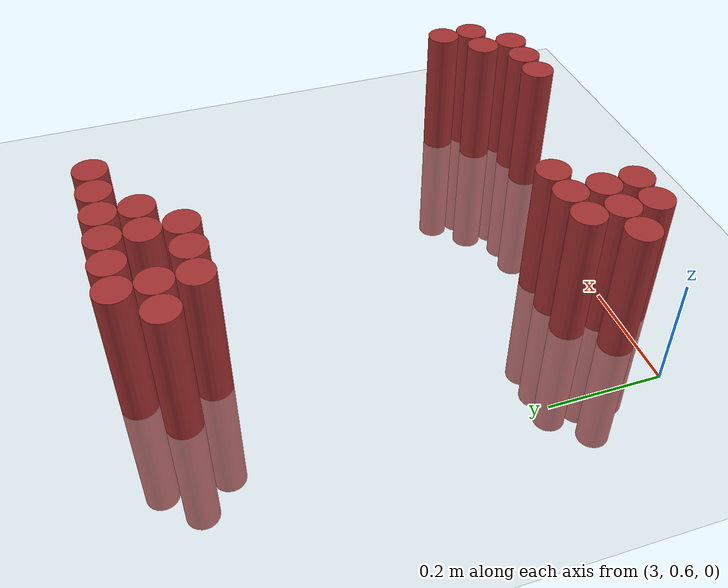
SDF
<sdf version="1.6">
 <world name="default">
  <model name="ground_plane">
   <static>1</static>
   <link name="link">
    <collision name="collision">
     <geometry><plane><normal>0 0 1</normal><size>100 100</size></plane></geometry>
     <surface><friction><ode><mu>100</mu><mu2>50</mu2></ode></friction></surface>
    </collision>
    <visual name="visual">
     <cast_shadows>0</cast_shadows>
     <geometry><plane><normal>0 0 1</normal><size>100 100</size></plane></geometry>
     <material>
      <script><uri>file://media/materials/scripts/gazebo.material</uri><name>Gazebo/Grey</name></script>
     </material>
    </visual>
   </link>
  </model>
  <model name="unit_cylinder_158">
   <static>1</static>
   <pose>3.210000 1.410000 0.000000 0.000000 0.000000 0.000000</pose>
   <link name="link">
    <inertial>
     <mass>1</mass>
     <inertia><ixx>0.145833</ixx><ixy>0</ixy><ixz>0</ixz><iyy>0.145833</iyy><iyz>0</iyz><izz>0.125</izz></inertia>
    </inertial>
    <collision name="collision">
     <geometry><cylinder><radius>0.030000</radius><length>0.5</length></cylinder></geometry>
    </collision>
    <visual name="visual">
     <geometry><cylinder><radius>0.030000</radius><length>0.5</length></cylinder></geometry>
     <material>
      <ambient>0.648000 0.192000 0.192000 1</ambient>
      <diffuse>0.648000 0.192000 0.192000 1</diffuse>
     </material>
     <material>
      <script><name>Gazebo/Grey</name><uri>file://media/materials/scripts/gazebo.material</uri></script>
     </material>
    </visual>
   </link>
  </model>
  <model name="unit_cylinder_159">
   <static>1</static>
   <pose>3.270000 1.410000 0.000000 0.000000 0.000000 0.000000</pose>
   <link name="link">
    <inertial>
     <mass>1</mass>
     <inertia><ixx>0.145833</ixx><ixy>0</ixy><ixz>0</ixz><iyy>0.145833</iyy><iyz>0</iyz><izz>0.125</izz></inertia>
    </inertial>
    <collision name="collision">
     <geometry><cylinder><radius>0.030000</radius><length>0.5</length></cylinder></geometry>
    </collision>
    <visual name="visual">
     <geometry><cylinder><radius>0.030000</radius><length>0.5</length></cylinder></geometry>
     <material>
      <ambient>0.648000 0.192000 0.192000 1</ambient>
      <diffuse>0.648000 0.192000 0.192000 1</diffuse>
     </material>
     <material>
      <script><name>Gazebo/Grey</name><uri>file://media/materials/scripts/gazebo.material</uri></script>
     </material>
    </visual>
   </link>
  </model>
  <model name="unit_cylinder_160">
   <static>1</static>
   <pose>3.330000 1.410000 0.000000 0.000000 0.000000 0.000000</pose>
   <link name="link">
    <inertial>
     <mass>1</mass>
     <inertia><ixx>0.145833</ixx><ixy>0</ixy><ixz>0</ixz><iyy>0.145833</iyy><iyz>0</iyz><izz>0.125</izz></inertia>
    </inertial>
    <collision name="collision">
     <geometry><cylinder><radius>0.030000</radius><length>0.5</length></cylinder></geometry>
    </collision>
    <visual name="visual">
     <geometry><cylinder><radius>0.030000</radius><length>0.5</length></cylinder></geometry>
     <material>
      <ambient>0.648000 0.192000 0.192000 1</ambient>
      <diffuse>0.648000 0.192000 0.192000 1</diffuse>
     </material>
     <material>
      <script><name>Gazebo/Grey</name><uri>file://media/materials/scripts/gazebo.material</uri></script>
     </material>
    </visual>
   </link>
  </model>
  <model name="unit_cylinder_161">
   <static>1</static>
   <pose>3.390000 1.410000 0.000000 0.000000 0.000000 0.000000</pose>
   <link name="link">
    <inertial>
     <mass>1</mass>
     <inertia><ixx>0.145833</ixx><ixy>0</ixy><ixz>0</ixz><iyy>0.145833</iyy><iyz>0</iyz><izz>0.125</izz></inertia>
    </inertial>
    <collision name="collision">
     <geometry><cylinder><radius>0.030000</radius><length>0.5</length></cylinder></geometry>
    </collision>
    <visual name="visual">
     <geometry><cylinder><radius>0.030000</radius><length>0.5</length></cylinder></geometry>
     <material>
      <ambient>0.648000 0.192000 0.192000 1</ambient>
      <diffuse>0.648000 0.192000 0.192000 1</diffuse>
     </material>
     <material>
      <script><name>Gazebo/Grey</name><uri>file://media/materials/scripts/gazebo.material</uri></script>
     </material>
    </visual>
   </link>
  </model>
  <model name="unit_cylinder_162">
   <static>1</static>
   <pose>3.450000 1.410000 0.000000 0.000000 0.000000 0.000000</pose>
   <link name="link">
    <inertial>
     <mass>1</mass>
     <inertia><ixx>0.145833</ixx><ixy>0</ixy><ixz>0</ixz><iyy>0.145833</iyy><iyz>0</iyz><izz>0.125</izz></inertia>
    </inertial>
    <collision name="collision">
     <geometry><cylinder><radius>0.030000</radius><length>0.5</length></cylinder></geometry>
    </collision>
    <visual name="visual">
     <geometry><cylinder><radius>0.030000</radius><length>0.5</length></cylinder></geometry>
     <material>
      <ambient>0.648000 0.192000 0.192000 1</ambient>
      <diffuse>0.648000 0.192000 0.192000 1</diffuse>
     </material>
     <material>
      <script><name>Gazebo/Grey</name><uri>file://media/materials/scripts/gazebo.material</uri></script>
     </material>
    </visual>
   </link>
  </model>
  <model name="unit_cylinder_163">
   <static>1</static>
   <pose>3.510000 1.410000 0.000000 0.000000 0.000000 0.000000</pose>
   <link name="link">
    <inertial>
     <mass>1</mass>
     <inertia><ixx>0.145833</ixx><ixy>0</ixy><ixz>0</ixz><iyy>0.145833</iyy><iyz>0</iyz><izz>0.125</izz></inertia>
    </inertial>
    <collision name="collision">
     <geometry><cylinder><radius>0.030000</radius><length>0.5</length></cylinder></geometry>
    </collision>
    <visual name="visual">
     <geometry><cylinder><radius>0.030000</radius><length>0.5</length></cylinder></geometry>
     <material>
      <ambient>0.648000 0.192000 0.192000 1</ambient>
      <diffuse>0.648000 0.192000 0.192000 1</diffuse>
     </material>
     <material>
      <script><name>Gazebo/Grey</name><uri>file://media/materials/scripts/gazebo.material</uri></script>
     </material>
    </visual>
   </link>
  </model>
  <model name="unit_cylinder_167">
   <static>1</static>
   <pose>3.150000 1.350000 0.000000 0.000000 0.000000 0.000000</pose>
   <link name="link">
    <inertial>
     <mass>1</mass>
     <inertia><ixx>0.145833</ixx><ixy>0</ixy><ixz>0</ixz><iyy>0.145833</iyy><iyz>0</iyz><izz>0.125</izz></inertia>
    </inertial>
    <collision name="collision">
     <geometry><cylinder><radius>0.030000</radius><length>0.5</length></cylinder></geometry>
    </collision>
    <visual name="visual">
     <geometry><cylinder><radius>0.030000</radius><length>0.5</length></cylinder></geometry>
     <material>
      <ambient>0.648000 0.192000 0.192000 1</ambient>
      <diffuse>0.648000 0.192000 0.192000 1</diffuse>
     </material>
     <material>
      <script><name>Gazebo/Grey</name><uri>file://media/materials/scripts/gazebo.material</uri></script>
     </material>
    </visual>
   </link>
  </model>
  <model name="unit_cylinder_168">
   <static>1</static>
   <pose>3.210000 1.350000 0.000000 0.000000 0.000000 0.000000</pose>
   <link name="link">
    <inertial>
     <mass>1</mass>
     <inertia><ixx>0.145833</ixx><ixy>0</ixy><ixz>0</ixz><iyy>0.145833</iyy><iyz>0</iyz><izz>0.125</izz></inertia>
    </inertial>
    <collision name="collision">
     <geometry><cylinder><radius>0.030000</radius><length>0.5</length></cylinder></geometry>
    </collision>
    <visual name="visual">
     <geometry><cylinder><radius>0.030000</radius><length>0.5</length></cylinder></geometry>
     <material>
      <ambient>0.648000 0.192000 0.192000 1</ambient>
      <diffuse>0.648000 0.192000 0.192000 1</diffuse>
     </material>
     <material>
      <script><name>Gazebo/Grey</name><uri>file://media/materials/scripts/gazebo.material</uri></script>
     </material>
    </visual>
   </link>
  </model>
  <model name="unit_cylinder_169">
   <static>1</static>
   <pose>3.330000 1.350000 0.000000 0.000000 0.000000 0.000000</pose>
   <link name="link">
    <inertial>
     <mass>1</mass>
     <inertia><ixx>0.145833</ixx><ixy>0</ixy><ixz>0</ixz><iyy>0.145833</iyy><iyz>0</iyz><izz>0.125</izz></inertia>
    </inertial>
    <collision name="collision">
     <geometry><cylinder><radius>0.030000</radius><length>0.5</length></cylinder></geometry>
    </collision>
    <visual name="visual">
     <geometry><cylinder><radius>0.030000</radius><length>0.5</length></cylinder></geometry>
     <material>
      <ambient>0.648000 0.192000 0.192000 1</ambient>
      <diffuse>0.648000 0.192000 0.192000 1</diffuse>
     </material>
     <material>
      <script><name>Gazebo/Grey</name><uri>file://media/materials/scripts/gazebo.material</uri></script>
     </material>
    </visual>
   </link>
  </model>
  <model name="unit_cylinder_170">
   <static>1</static>
   <pose>3.390000 1.350000 0.000000 0.000000 0.000000 0.000000</pose>
   <link name="link">
    <inertial>
     <mass>1</mass>
     <inertia><ixx>0.145833</ixx><ixy>0</ixy><ixz>0</ixz><iyy>0.145833</iyy><iyz>0</iyz><izz>0.125</izz></inertia>
    </inertial>
    <collision name="collision">
     <geometry><cylinder><radius>0.030000</radius><length>0.5</length></cylinder></geometry>
    </collision>
    <visual name="visual">
     <geometry><cylinder><radius>0.030000</radius><length>0.5</length></cylinder></geometry>
     <material>
      <ambient>0.648000 0.192000 0.192000 1</ambient>
      <diffuse>0.648000 0.192000 0.192000 1</diffuse>
     </material>
     <material>
      <script><name>Gazebo/Grey</name><uri>file://media/materials/scripts/gazebo.material</uri></script>
     </material>
    </visual>
   </link>
  </model>
  <model name="unit_cylinder_172">
   <static>1</static>
   <pose>3.210000 1.290000 0.000000 0.000000 0.000000 0.000000</pose>
   <link name="link">
    <inertial>
     <mass>1</mass>
     <inertia><ixx>0.145833</ixx><ixy>0</ixy><ixz>0</ixz><iyy>0.145833</iyy><iyz>0</iyz><izz>0.125</izz></inertia>
    </inertial>
    <collision name="collision">
     <geometry><cylinder><radius>0.030000</radius><length>0.5</length></cylinder></geometry>
    </collision>
    <visual name="visual">
     <geometry><cylinder><radius>0.030000</radius><length>0.5</length></cylinder></geometry>
     <material>
      <ambient>0.648000 0.192000 0.192000 1</ambient>
      <diffuse>0.648000 0.192000 0.192000 1</diffuse>
     </material>
     <material>
      <script><name>Gazebo/Grey</name><uri>file://media/materials/scripts/gazebo.material</uri></script>
     </material>
    </visual>
   </link>
  </model>
  <model name="unit_cylinder_173">
   <static>1</static>
   <pose>3.270000 1.290000 0.000000 0.000000 0.000000 0.000000</pose>
   <link name="link">
    <inertial>
     <mass>1</mass>
     <inertia><ixx>0.145833</ixx><ixy>0</ixy><ixz>0</ixz><iyy>0.145833</iyy><iyz>0</iyz><izz>0.125</izz></inertia>
    </inertial>
    <collision name="collision">
     <geometry><cylinder><radius>0.030000</radius><length>0.5</length></cylinder></geometry>
    </collision>
    <visual name="visual">
     <geometry><cylinder><radius>0.030000</radius><length>0.5</length></cylinder></geometry>
     <material>
      <ambient>0.648000 0.192000 0.192000 1</ambient>
      <diffuse>0.648000 0.192000 0.192000 1</diffuse>
     </material>
     <material>
      <script><name>Gazebo/Grey</name><uri>file://media/materials/scripts/gazebo.material</uri></script>
     </material>
    </visual>
   </link>
  </model>
  <model name="unit_cylinder_174">
   <static>1</static>
   <pose>3.330000 1.290000 0.000000 0.000000 0.000000 0.000000</pose>
   <link name="link">
    <inertial>
     <mass>1</mass>
     <inertia><ixx>0.145833</ixx><ixy>0</ixy><ixz>0</ixz><iyy>0.145833</iyy><iyz>0</iyz><izz>0.125</izz></inertia>
    </inertial>
    <collision name="collision">
     <geometry><cylinder><radius>0.030000</radius><length>0.5</length></cylinder></geometry>
    </collision>
    <visual name="visual">
     <geometry><cylinder><radius>0.030000</radius><length>0.5</length></cylinder></geometry>
     <material>
      <ambient>0.648000 0.192000 0.192000 1</ambient>
      <diffuse>0.648000 0.192000 0.192000 1</diffuse>
     </material>
     <material>
      <script><name>Gazebo/Grey</name><uri>file://media/materials/scripts/gazebo.material</uri></script>
     </material>
    </visual>
   </link>
  </model>
  <model name="unit_cylinder_199">
   <static>1</static>
   <pose>3.150000 0.690000 0.000000 0.000000 0.000000 0.000000</pose>
   <link name="link">
    <inertial>
     <mass>1</mass>
     <inertia><ixx>0.145833</ixx><ixy>0</ixy><ixz>0</ixz><iyy>0.145833</iyy><iyz>0</iyz><izz>0.125</izz></inertia>
    </inertial>
    <collision name="collision">
     <geometry><cylinder><radius>0.030000</radius><length>0.5</length></cylinder></geometry>
    </collision>
    <visual name="visual">
     <geometry><cylinder><radius>0.030000</radius><length>0.5</length></cylinder></geometry>
     <material>
      <ambient>0.648000 0.192000 0.192000 1</ambient>
      <diffuse>0.648000 0.192000 0.192000 1</diffuse>
     </material>
     <material>
      <script><name>Gazebo/Grey</name><uri>file://media/materials/scripts/gazebo.material</uri></script>
     </material>
    </visual>
   </link>
  </model>
  <model name="unit_cylinder_200">
   <static>1</static>
   <pose>3.210000 0.690000 0.000000 0.000000 0.000000 0.000000</pose>
   <link name="link">
    <inertial>
     <mass>1</mass>
     <inertia><ixx>0.145833</ixx><ixy>0</ixy><ixz>0</ixz><iyy>0.145833</iyy><iyz>0</iyz><izz>0.125</izz></inertia>
    </inertial>
    <collision name="collision">
     <geometry><cylinder><radius>0.030000</radius><length>0.5</length></cylinder></geometry>
    </collision>
    <visual name="visual">
     <geometry><cylinder><radius>0.030000</radius><length>0.5</length></cylinder></geometry>
     <material>
      <ambient>0.648000 0.192000 0.192000 1</ambient>
      <diffuse>0.648000 0.192000 0.192000 1</diffuse>
     </material>
     <material>
      <script><name>Gazebo/Grey</name><uri>file://media/materials/scripts/gazebo.material</uri></script>
     </material>
    </visual>
   </link>
  </model>
  <model name="unit_cylinder_201">
   <static>1</static>
   <pose>3.270000 0.690000 0.000000 0.000000 0.000000 0.000000</pose>
   <link name="link">
    <inertial>
     <mass>1</mass>
     <inertia><ixx>0.145833</ixx><ixy>0</ixy><ixz>0</ixz><iyy>0.145833</iyy><iyz>0</iyz><izz>0.125</izz></inertia>
    </inertial>
    <collision name="collision">
     <geometry><cylinder><radius>0.030000</radius><length>0.5</length></cylinder></geometry>
    </collision>
    <visual name="visual">
     <geometry><cylinder><radius>0.030000</radius><length>0.5</length></cylinder></geometry>
     <material>
      <ambient>0.648000 0.192000 0.192000 1</ambient>
      <diffuse>0.648000 0.192000 0.192000 1</diffuse>
     </material>
     <material>
      <script><name>Gazebo/Grey</name><uri>file://media/materials/scripts/gazebo.material</uri></script>
     </material>
    </visual>
   </link>
  </model>
  <model name="unit_cylinder_202">
   <static>1</static>
   <pose>3.750000 0.690000 0.000000 0.000000 0.000000 0.000000</pose>
   <link name="link">
    <inertial>
     <mass>1</mass>
     <inertia><ixx>0.145833</ixx><ixy>0</ixy><ixz>0</ixz><iyy>0.145833</iyy><iyz>0</iyz><izz>0.125</izz></inertia>
    </inertial>
    <collision name="collision">
     <geometry><cylinder><radius>0.030000</radius><length>0.5</length></cylinder></geometry>
    </collision>
    <visual name="visual">
     <geometry><cylinder><radius>0.030000</radius><length>0.5</length></cylinder></geometry>
     <material>
      <ambient>0.648000 0.192000 0.192000 1</ambient>
      <diffuse>0.648000 0.192000 0.192000 1</diffuse>
     </material>
     <material>
      <script><name>Gazebo/Grey</name><uri>file://media/materials/scripts/gazebo.material</uri></script>
     </material>
    </visual>
   </link>
  </model>
  <model name="unit_cylinder_204">
   <static>1</static>
   <pose>3.090000 0.630000 0.000000 0.000000 0.000000 0.000000</pose>
   <link name="link">
    <inertial>
     <mass>1</mass>
     <inertia><ixx>0.145833</ixx><ixy>0</ixy><ixz>0</ixz><iyy>0.145833</iyy><iyz>0</iyz><izz>0.125</izz></inertia>
    </inertial>
    <collision name="collision">
     <geometry><cylinder><radius>0.030000</radius><length>0.5</length></cylinder></geometry>
    </collision>
    <visual name="visual">
     <geometry><cylinder><radius>0.030000</radius><length>0.5</length></cylinder></geometry>
     <material>
      <ambient>0.648000 0.192000 0.192000 1</ambient>
      <diffuse>0.648000 0.192000 0.192000 1</diffuse>
     </material>
     <material>
      <script><name>Gazebo/Grey</name><uri>file://media/materials/scripts/gazebo.material</uri></script>
     </material>
    </visual>
   </link>
  </model>
  <model name="unit_cylinder_205">
   <static>1</static>
   <pose>3.150000 0.630000 0.000000 0.000000 0.000000 0.000000</pose>
   <link name="link">
    <inertial>
     <mass>1</mass>
     <inertia><ixx>0.145833</ixx><ixy>0</ixy><ixz>0</ixz><iyy>0.145833</iyy><iyz>0</iyz><izz>0.125</izz></inertia>
    </inertial>
    <collision name="collision">
     <geometry><cylinder><radius>0.030000</radius><length>0.5</length></cylinder></geometry>
    </collision>
    <visual name="visual">
     <geometry><cylinder><radius>0.030000</radius><length>0.5</length></cylinder></geometry>
     <material>
      <ambient>0.648000 0.192000 0.192000 1</ambient>
      <diffuse>0.648000 0.192000 0.192000 1</diffuse>
     </material>
     <material>
      <script><name>Gazebo/Grey</name><uri>file://media/materials/scripts/gazebo.material</uri></script>
     </material>
    </visual>
   </link>
  </model>
  <model name="unit_cylinder_206">
   <static>1</static>
   <pose>3.210000 0.630000 0.000000 0.000000 0.000000 0.000000</pose>
   <link name="link">
    <inertial>
     <mass>1</mass>
     <inertia><ixx>0.145833</ixx><ixy>0</ixy><ixz>0</ixz><iyy>0.145833</iyy><iyz>0</iyz><izz>0.125</izz></inertia>
    </inertial>
    <collision name="collision">
     <geometry><cylinder><radius>0.030000</radius><length>0.5</length></cylinder></geometry>
    </collision>
    <visual name="visual">
     <geometry><cylinder><radius>0.030000</radius><length>0.5</length></cylinder></geometry>
     <material>
      <ambient>0.648000 0.192000 0.192000 1</ambient>
      <diffuse>0.648000 0.192000 0.192000 1</diffuse>
     </material>
     <material>
      <script><name>Gazebo/Grey</name><uri>file://media/materials/scripts/gazebo.material</uri></script>
     </material>
    </visual>
   </link>
  </model>
  <model name="unit_cylinder_207">
   <static>1</static>
   <pose>3.690000 0.630000 0.000000 0.000000 0.000000 0.000000</pose>
   <link name="link">
    <inertial>
     <mass>1</mass>
     <inertia><ixx>0.145833</ixx><ixy>0</ixy><ixz>0</ixz><iyy>0.145833</iyy><iyz>0</iyz><izz>0.125</izz></inertia>
    </inertial>
    <collision name="collision">
     <geometry><cylinder><radius>0.030000</radius><length>0.5</length></cylinder></geometry>
    </collision>
    <visual name="visual">
     <geometry><cylinder><radius>0.030000</radius><length>0.5</length></cylinder></geometry>
     <material>
      <ambient>0.648000 0.192000 0.192000 1</ambient>
      <diffuse>0.648000 0.192000 0.192000 1</diffuse>
     </material>
     <material>
      <script><name>Gazebo/Grey</name><uri>file://media/materials/scripts/gazebo.material</uri></script>
     </material>
    </visual>
   </link>
  </model>
  <model name="unit_cylinder_208">
   <static>1</static>
   <pose>3.750000 0.630000 0.000000 0.000000 0.000000 0.000000</pose>
   <link name="link">
    <inertial>
     <mass>1</mass>
     <inertia><ixx>0.145833</ixx><ixy>0</ixy><ixz>0</ixz><iyy>0.145833</iyy><iyz>0</iyz><izz>0.125</izz></inertia>
    </inertial>
    <collision name="collision">
     <geometry><cylinder><radius>0.030000</radius><length>0.5</length></cylinder></geometry>
    </collision>
    <visual name="visual">
     <geometry><cylinder><radius>0.030000</radius><length>0.5</length></cylinder></geometry>
     <material>
      <ambient>0.648000 0.192000 0.192000 1</ambient>
      <diffuse>0.648000 0.192000 0.192000 1</diffuse>
     </material>
     <material>
      <script><name>Gazebo/Grey</name><uri>file://media/materials/scripts/gazebo.material</uri></script>
     </material>
    </visual>
   </link>
  </model>
  <model name="unit_cylinder_211">
   <static>1</static>
   <pose>3.150000 0.570000 0.000000 0.000000 0.000000 0.000000</pose>
   <link name="link">
    <inertial>
     <mass>1</mass>
     <inertia><ixx>0.145833</ixx><ixy>0</ixy><ixz>0</ixz><iyy>0.145833</iyy><iyz>0</iyz><izz>0.125</izz></inertia>
    </inertial>
    <collision name="collision">
     <geometry><cylinder><radius>0.030000</radius><length>0.5</length></cylinder></geometry>
    </collision>
    <visual name="visual">
     <geometry><cylinder><radius>0.030000</radius><length>0.5</length></cylinder></geometry>
     <material>
      <ambient>0.648000 0.192000 0.192000 1</ambient>
      <diffuse>0.648000 0.192000 0.192000 1</diffuse>
     </material>
     <material>
      <script><name>Gazebo/Grey</name><uri>file://media/materials/scripts/gazebo.material</uri></script>
     </material>
    </visual>
   </link>
  </model>
  <model name="unit_cylinder_212">
   <static>1</static>
   <pose>3.210000 0.570000 0.000000 0.000000 0.000000 0.000000</pose>
   <link name="link">
    <inertial>
     <mass>1</mass>
     <inertia><ixx>0.145833</ixx><ixy>0</ixy><ixz>0</ixz><iyy>0.145833</iyy><iyz>0</iyz><izz>0.125</izz></inertia>
    </inertial>
    <collision name="collision">
     <geometry><cylinder><radius>0.030000</radius><length>0.5</length></cylinder></geometry>
    </collision>
    <visual name="visual">
     <geometry><cylinder><radius>0.030000</radius><length>0.5</length></cylinder></geometry>
     <material>
      <ambient>0.648000 0.192000 0.192000 1</ambient>
      <diffuse>0.648000 0.192000 0.192000 1</diffuse>
     </material>
     <material>
      <script><name>Gazebo/Grey</name><uri>file://media/materials/scripts/gazebo.material</uri></script>
     </material>
    </visual>
   </link>
  </model>
  <model name="unit_cylinder_213">
   <static>1</static>
   <pose>3.570000 0.570000 0.000000 0.000000 0.000000 0.000000</pose>
   <link name="link">
    <inertial>
     <mass>1</mass>
     <inertia><ixx>0.145833</ixx><ixy>0</ixy><ixz>0</ixz><iyy>0.145833</iyy><iyz>0</iyz><izz>0.125</izz></inertia>
    </inertial>
    <collision name="collision">
     <geometry><cylinder><radius>0.030000</radius><length>0.5</length></cylinder></geometry>
    </collision>
    <visual name="visual">
     <geometry><cylinder><radius>0.030000</radius><length>0.5</length></cylinder></geometry>
     <material>
      <ambient>0.648000 0.192000 0.192000 1</ambient>
      <diffuse>0.648000 0.192000 0.192000 1</diffuse>
     </material>
     <material>
      <script><name>Gazebo/Grey</name><uri>file://media/materials/scripts/gazebo.material</uri></script>
     </material>
    </visual>
   </link>
  </model>
  <model name="unit_cylinder_214">
   <static>1</static>
   <pose>3.630000 0.570000 0.000000 0.000000 0.000000 0.000000</pose>
   <link name="link">
    <inertial>
     <mass>1</mass>
     <inertia><ixx>0.145833</ixx><ixy>0</ixy><ixz>0</ixz><iyy>0.145833</iyy><iyz>0</iyz><izz>0.125</izz></inertia>
    </inertial>
    <collision name="collision">
     <geometry><cylinder><radius>0.030000</radius><length>0.5</length></cylinder></geometry>
    </collision>
    <visual name="visual">
     <geometry><cylinder><radius>0.030000</radius><length>0.5</length></cylinder></geometry>
     <material>
      <ambient>0.648000 0.192000 0.192000 1</ambient>
      <diffuse>0.648000 0.192000 0.192000 1</diffuse>
     </material>
     <material>
      <script><name>Gazebo/Grey</name><uri>file://media/materials/scripts/gazebo.material</uri></script>
     </material>
    </visual>
   </link>
  </model>
  <model name="unit_cylinder_215">
   <static>1</static>
   <pose>3.690000 0.570000 0.000000 0.000000 0.000000 0.000000</pose>
   <link name="link">
    <inertial>
     <mass>1</mass>
     <inertia><ixx>0.145833</ixx><ixy>0</ixy><ixz>0</ixz><iyy>0.145833</iyy><iyz>0</iyz><izz>0.125</izz></inertia>
    </inertial>
    <collision name="collision">
     <geometry><cylinder><radius>0.030000</radius><length>0.5</length></cylinder></geometry>
    </collision>
    <visual name="visual">
     <geometry><cylinder><radius>0.030000</radius><length>0.5</length></cylinder></geometry>
     <material>
      <ambient>0.648000 0.192000 0.192000 1</ambient>
      <diffuse>0.648000 0.192000 0.192000 1</diffuse>
     </material>
     <material>
      <script><name>Gazebo/Grey</name><uri>file://media/materials/scripts/gazebo.material</uri></script>
     </material>
    </visual>
   </link>
  </model>
 </world>
</sdf>
